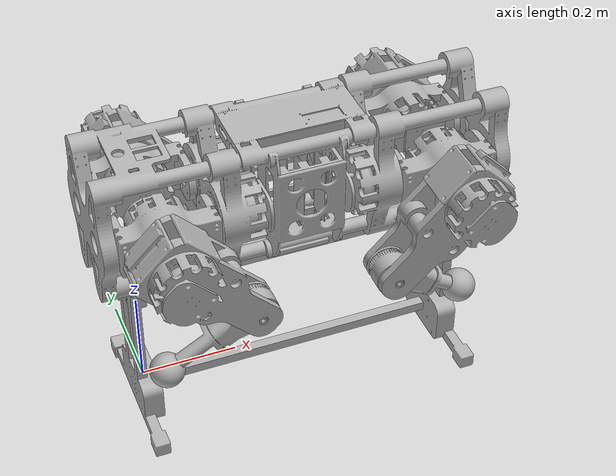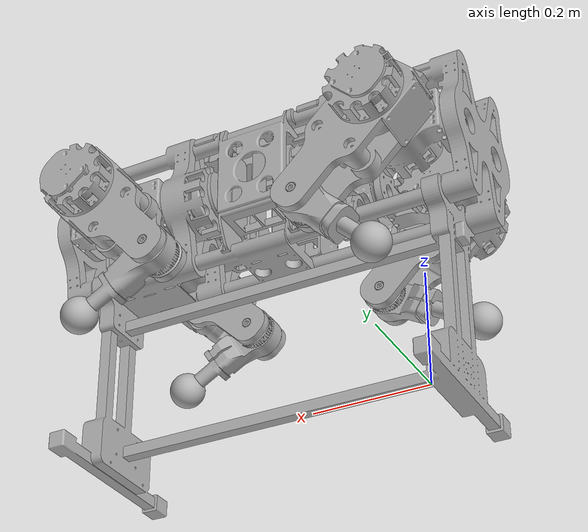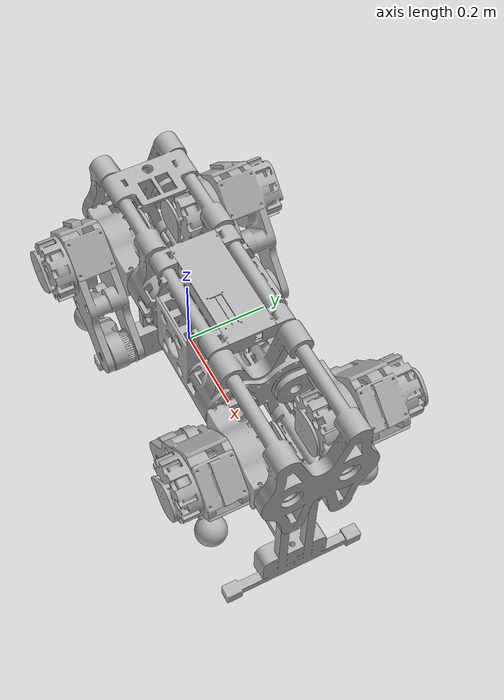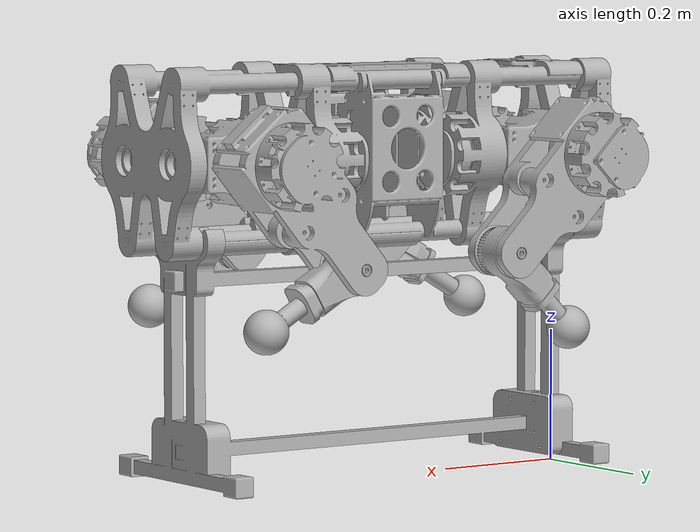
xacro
<?xml version="1.0" ?>
<robot name="opendog_stand" xmlns:xacro="http://www.ros.org/wiki/xacro">

<!-- Configuration of Robot Links-->

<xacro:include filename="$(find opendog_stand_description)/urdf/opendog_stand_links.xacro" />

<!-- Configuration of Robot Joints-->

<xacro:include filename="$(find opendog_stand_description)/urdf/opendog_stand_joints.xacro" />

<!-- Configuration of Ros2_control-->

<xacro:include filename="$(find opendog_stand_description)/urdf/opendog_stand_ros2_control_plugin.xacro" />

<!-- Other Configurations-->

<xacro:include filename="$(find opendog_stand_description)/urdf/opendog_stand.trans" />
<xacro:include filename="$(find opendog_stand_description)/urdf/opendog_stand.gazebo" />
<xacro:include filename="$(find opendog_stand_description)/urdf/materials.xacro" />
</robot>

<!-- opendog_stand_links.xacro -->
<robot name="openleg" xmlns:xacro="http://www.ros.org/wiki/xacro">

<!-- Robot Links -->
<link name="world"/>
<link name="base_link">
  <inertial>
    <origin xyz="0.29765856523805456 -0.06705638041729904 0.14855597421852995" rpy="0 0 0"/>
    <mass value="20.266474825537127"/>
    <inertia ixx="0.375037" iyy="2.100295" izz="1.821548" ixy="-0.001521" iyz="-0.000617" ixz="0.0"/>
  </inertial>
  <visual>
    <origin xyz="0 0 0" rpy="0 0 0"/>
    <geometry>
      <mesh filename="file://$(find opendog_stand_description)/meshes/base_link.stl" scale="0.001 0.001 0.001"/>
    </geometry>
    <material name="silver"/>
  </visual>
  <collision>
    <origin xyz="0 0 0" rpy="0 0 0"/>
    <geometry>
      <mesh filename="file://$(find opendog_stand_description)/meshes/base_link.stl" scale="0.001 0.001 0.001"/>
    </geometry>
  </collision>
</link>

<link name="ur_shoulder_1">
  <inertial>
    <origin xyz="-0.09785829303628078 0.02223966584464055 0.00016305377611242067" rpy="0 0 0"/>
    <mass value="8.21838423136781"/>
    <inertia ixx="0.012708" iyy="0.027002" izz="0.026258" ixy="-0.000651" iyz="4.8e-05" ixz="1.1e-05"/>
  </inertial>
  <visual>
    <origin xyz="-0.123659 0.007686 -0.474485" rpy="0 0 0"/>
    <geometry>
      <mesh filename="file://$(find opendog_stand_description)/meshes/ur_shoulder_1.stl" scale="0.001 0.001 0.001"/>
    </geometry>
    <material name="silver"/>
  </visual>
  <collision>
    <origin xyz="-0.123659 0.007686 -0.474485" rpy="0 0 0"/>
    <geometry>
      <mesh filename="file://$(find opendog_stand_description)/meshes/ur_shoulder_1.stl" scale="0.001 0.001 0.001"/>
    </geometry>
  </collision>
</link>

<link name="ur_middleleg_1">
  <inertial>
    <origin xyz="0.02655252289271656 0.05472965720806993 -0.026878473024749328" rpy="0 0 0"/>
    <mass value="14.227687011972318"/>
    <inertia ixx="0.061226" iyy="0.085803" izz="0.061502" ixy="0.005391" iyz="-0.005035" ixz="0.027705"/>
  </inertial>
  <visual>
    <origin xyz="-0.024018 -0.058674 -0.474485" rpy="0 0 0"/>
    <geometry>
      <mesh filename="file://$(find opendog_stand_description)/meshes/ur_middleleg_1.stl" scale="0.001 0.001 0.001"/>
    </geometry>
    <material name="silver"/>
  </visual>
  <collision>
    <origin xyz="-0.024018 -0.058674 -0.474485" rpy="0 0 0"/>
    <geometry>
      <mesh filename="file://$(find opendog_stand_description)/meshes/ur_middleleg_1.stl" scale="0.001 0.001 0.001"/>
    </geometry>
  </collision>
</link>

<link name="ul_shoulder_1">
  <inertial>
    <origin xyz="-0.09797154941116658 -0.022107897325156334 0.0001637293869130585" rpy="0 0 0"/>
    <mass value="8.250541403982718"/>
    <inertia ixx="0.012737" iyy="0.027034" izz="0.026319" ixy="0.000689" iyz="-4.7e-05" ixz="1.2e-05"/>
  </inertial>
  <visual>
    <origin xyz="-0.123659 0.125967 -0.474485" rpy="0 0 0"/>
    <geometry>
      <mesh filename="file://$(find opendog_stand_description)/meshes/ul_shoulder_1.stl" scale="0.001 0.001 0.001"/>
    </geometry>
    <material name="silver"/>
  </visual>
  <collision>
    <origin xyz="-0.123659 0.125967 -0.474485" rpy="0 0 0"/>
    <geometry>
      <mesh filename="file://$(find opendog_stand_description)/meshes/ul_shoulder_1.stl" scale="0.001 0.001 0.001"/>
    </geometry>
  </collision>
</link>

<link name="ul_middleleg_1">
  <inertial>
    <origin xyz="0.026552263666205788 -0.05473054768390884 -0.026878297131730566" rpy="0 0 0"/>
    <mass value="14.227664566368246"/>
    <inertia ixx="0.061226" iyy="0.085803" izz="0.061502" ixy="-0.005391" iyz="0.005035" ixz="0.027705"/>
  </inertial>
  <visual>
    <origin xyz="-0.024018 0.192326 -0.474485" rpy="0 0 0"/>
    <geometry>
      <mesh filename="file://$(find opendog_stand_description)/meshes/ul_middleleg_1.stl" scale="0.001 0.001 0.001"/>
    </geometry>
    <material name="silver"/>
  </visual>
  <collision>
    <origin xyz="-0.024018 0.192326 -0.474485" rpy="0 0 0"/>
    <geometry>
      <mesh filename="file://$(find opendog_stand_description)/meshes/ul_middleleg_1.stl" scale="0.001 0.001 0.001"/>
    </geometry>
  </collision>
</link>

<link name="ll_hip_1">
  <inertial>
    <origin xyz="0.0978556052486162 -0.022143362618367995 0.00015911556218167755" rpy="0 0 0"/>
    <mass value="8.221636898406961"/>
    <inertia ixx="0.012784" iyy="0.027006" izz="0.026333" ixy="-0.000657" iyz="-4.9e-05" ixz="-1.1e-05"/>
  </inertial>
  <visual>
    <origin xyz="-0.471659 0.125967 -0.474485" rpy="0 0 0"/>
    <geometry>
      <mesh filename="file://$(find opendog_stand_description)/meshes/ll_hip_1.stl" scale="0.001 0.001 0.001"/>
    </geometry>
    <material name="silver"/>
  </visual>
  <collision>
    <origin xyz="-0.471659 0.125967 -0.474485" rpy="0 0 0"/>
    <geometry>
      <mesh filename="file://$(find opendog_stand_description)/meshes/ll_hip_1.stl" scale="0.001 0.001 0.001"/>
    </geometry>
  </collision>
</link>

<link name="ll_middleleg_1">
  <inertial>
    <origin xyz="-0.02655239130407583 -0.05473053921082616 -0.026878472414248566" rpy="0 0 0"/>
    <mass value="14.227687254589894"/>
    <inertia ixx="0.061226" iyy="0.085803" izz="0.061502" ixy="0.005391" iyz="0.005035" ixz="-0.027705"/>
  </inertial>
  <visual>
    <origin xyz="-0.571299 0.192326 -0.474485" rpy="0 0 0"/>
    <geometry>
      <mesh filename="file://$(find opendog_stand_description)/meshes/ll_middleleg_1.stl" scale="0.001 0.001 0.001"/>
    </geometry>
    <material name="silver"/>
  </visual>
  <collision>
    <origin xyz="-0.571299 0.192326 -0.474485" rpy="0 0 0"/>
    <geometry>
      <mesh filename="file://$(find opendog_stand_description)/meshes/ll_middleleg_1.stl" scale="0.001 0.001 0.001"/>
    </geometry>
  </collision>
</link>

<link name="lr_hip_1">
  <inertial>
    <origin xyz="0.09785741891175764 0.022239671062088552 0.00016304661283195188" rpy="0 0 0"/>
    <mass value="8.218386359006598"/>
    <inertia ixx="0.012708" iyy="0.027002" izz="0.026258" ixy="0.000651" iyz="4.8e-05" ixz="-1.1e-05"/>
  </inertial>
  <visual>
    <origin xyz="-0.471659 0.007686 -0.474485" rpy="0 0 0"/>
    <geometry>
      <mesh filename="file://$(find opendog_stand_description)/meshes/lr_hip_1.stl" scale="0.001 0.001 0.001"/>
    </geometry>
    <material name="silver"/>
  </visual>
  <collision>
    <origin xyz="-0.471659 0.007686 -0.474485" rpy="0 0 0"/>
    <geometry>
      <mesh filename="file://$(find opendog_stand_description)/meshes/lr_hip_1.stl" scale="0.001 0.001 0.001"/>
    </geometry>
  </collision>
</link>

<link name="lr_middleleg_1">
  <inertial>
    <origin xyz="-0.02410854634893167 0.05472964093419624 -0.029090152760393895" rpy="0 0 0"/>
    <mass value="14.2276519621801"/>
    <inertia ixx="0.066039" iyy="0.085803" izz="0.056689" ixy="-0.004932" iyz="-0.005486" ixz="-0.027308"/>
  </inertial>
  <visual>
    <origin xyz="-0.571299 -0.058674 -0.474485" rpy="0 0 0"/>
    <geometry>
      <mesh filename="file://$(find opendog_stand_description)/meshes/lr_middleleg_1.stl" scale="0.001 0.001 0.001"/>
    </geometry>
    <material name="silver"/>
  </visual>
  <collision>
    <origin xyz="-0.571299 -0.058674 -0.474485" rpy="0 0 0"/>
    <geometry>
      <mesh filename="file://$(find opendog_stand_description)/meshes/lr_middleleg_1.stl" scale="0.001 0.001 0.001"/>
    </geometry>
  </collision>
</link>

<link name="lr_lowerleg_2">
  <inertial>
    <origin xyz="0.06224361192579653 -0.0401732772739245 -0.03594052661627556" rpy="0 0 0"/>
    <mass value="4.0749496298790815"/>
    <inertia ixx="0.006615" iyy="0.021256" izz="0.016145" ixy="0.000143" iyz="-8.3e-05" ixz="0.008252"/>
  </inertial>
  <visual>
    <origin xyz="-0.443153 -0.140674 -0.321767" rpy="0 0 0"/>
    <geometry>
      <mesh filename="file://$(find opendog_stand_description)/meshes/lr_lowerleg_2.stl" scale="0.001 0.001 0.001"/>
    </geometry>
    <material name="silver"/>
  </visual>
  <collision>
    <origin xyz="-0.443153 -0.140674 -0.321767" rpy="0 0 0"/>
    <geometry>
      <mesh filename="file://$(find opendog_stand_description)/meshes/lr_lowerleg_2.stl" scale="0.001 0.001 0.001"/>
    </geometry>
  </collision>
</link>

<link name="ll_lowerLeg_1">
  <inertial>
    <origin xyz="0.06224395628672491 0.04017239517999152 -0.0359407275155198" rpy="0 0 0"/>
    <mass value="4.074949631235474"/>
    <inertia ixx="0.006615" iyy="0.021256" izz="0.016145" ixy="-0.000143" iyz="8.3e-05" ixz="0.008252"/>
  </inertial>
  <visual>
    <origin xyz="-0.43033 0.274326 -0.333517" rpy="0 0 0"/>
    <geometry>
      <mesh filename="file://$(find opendog_stand_description)/meshes/ll_lowerLeg_1.stl" scale="0.001 0.001 0.001"/>
    </geometry>
    <material name="silver"/>
  </visual>
  <collision>
    <origin xyz="-0.43033 0.274326 -0.333517" rpy="0 0 0"/>
    <geometry>
      <mesh filename="file://$(find opendog_stand_description)/meshes/ll_lowerLeg_1.stl" scale="0.001 0.001 0.001"/>
    </geometry>
  </collision>
</link>

<link name="ul_lowerleg_1">
  <inertial>
    <origin xyz="-0.07156807198737279 0.04020081884647034 -0.041323948195093385" rpy="0 0 0"/>
    <mass value="4.21995926358348"/>
    <inertia ixx="0.008622" iyy="0.029242" izz="0.022138" ixy="0.000174" iyz="0.000101" ixz="-0.011703"/>
  </inertial>
  <visual>
    <origin xyz="-0.164987 0.274326 -0.333517" rpy="0 0 0"/>
    <geometry>
      <mesh filename="file://$(find opendog_stand_description)/meshes/ul_lowerleg_1.stl" scale="0.001 0.001 0.001"/>
    </geometry>
    <material name="silver"/>
  </visual>
  <collision>
    <origin xyz="-0.164987 0.274326 -0.333517" rpy="0 0 0"/>
    <geometry>
      <mesh filename="file://$(find opendog_stand_description)/meshes/ul_lowerleg_1.stl" scale="0.001 0.001 0.001"/>
    </geometry>
  </collision>
</link>

<link name="ur_lowerleg_1">
  <inertial>
    <origin xyz="-0.050820875236943314 -0.04017327621481369 -0.05082597628130897" rpy="0 0 0"/>
    <mass value="4.07494961611928"/>
    <inertia ixx="0.011379" iyy="0.021256" izz="0.011381" ixy="-0.000117" iyz="-0.000117" ixz="-0.009529"/>
  </inertial>
  <visual>
    <origin xyz="-0.164987 -0.140674 -0.333517" rpy="0 0 0"/>
    <geometry>
      <mesh filename="file://$(find opendog_stand_description)/meshes/ur_lowerleg_1.stl" scale="0.001 0.001 0.001"/>
    </geometry>
    <material name="silver"/>
  </visual>
  <collision>
    <origin xyz="-0.164987 -0.140674 -0.333517" rpy="0 0 0"/>
    <geometry>
      <mesh filename="file://$(find opendog_stand_description)/meshes/ur_lowerleg_1.stl" scale="0.001 0.001 0.001"/>
    </geometry>
  </collision>
</link>

<link name="base_linkr_1">
  <inertial>
    <origin xyz="-0.3678228631538539 0.05042615495359001 0.09021826931094556" rpy="0 0 0"/>
    <mass value="70.88293840121786"/>
    <inertia ixx="0.761631" iyy="4.077449" izz="3.905689" ixy="-0.001055" iyz="-0.000345" ixz="0.05479"/>
  </inertial>
  <visual>
    <origin xyz="-0.665939 0.117254 -0.385318" rpy="0 0 0"/>
    <geometry>
      <mesh filename="file://$(find opendog_stand_description)/meshes/base_linkr_1.stl" scale="0.001 0.001 0.001"/>
    </geometry>
    <material name="silver"/>
  </visual>
  <collision>
    <origin xyz="-0.665939 0.117254 -0.385318" rpy="0 0 0"/>
    <geometry>
      <mesh filename="file://$(find opendog_stand_description)/meshes/base_linkr_1.stl" scale="0.001 0.001 0.001"/>
    </geometry>
  </collision>
</link>
</robot>

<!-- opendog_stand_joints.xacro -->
<robot name="opendog_stand" xmlns:xacro="http://www.ros.org/wiki/xacro">

<!-- Joints -->

<joint name="fixed_to_world_joint" type="fixed">
  <origin xyz="0 0 0" rpy="0 0 0"/>
  <parent link="world"/>
  <child link="base_link"/>
</joint>

<joint name="ur_shoulder_to_base_link" type="revolute">
  <origin xyz="-0.54228 0.109568 0.089167" rpy="0 0 0"/>
  <parent link="base_linkr_1"/>
  <child link="ur_shoulder_1"/>
  <axis xyz="1.0 -0.0 0.0"/>
  <limit upper="0.349066" lower="-0.349066" effort="100" velocity="100"/>
</joint>

<joint name="ur_upperleg_to_shoulder" type="continuous">
  <origin xyz="-0.099641 0.06636 0.0" rpy="0 0 0"/>
  <parent link="ur_shoulder_1"/>
  <child link="ur_middleleg_1"/>
  <axis xyz="-0.0 -1.0 -0.0"/>
</joint>

<joint name="ul_shoulder_to_base_link" type="revolute">
  <origin xyz="-0.54228 -0.008713 0.089167" rpy="0 0 0"/>
  <parent link="base_linkr_1"/>
  <child link="ul_shoulder_1"/>
  <axis xyz="-1.0 0.0 -0.0"/>
  <limit upper="0.349066" lower="-0.785398" effort="100" velocity="100"/>
</joint>

<joint name="ul_upperleg_to_shoulder" type="continuous">
  <origin xyz="-0.099641 -0.066359 0.0" rpy="0 0 0"/>
  <parent link="ul_shoulder_1"/>
  <child link="ul_middleleg_1"/>
  <axis xyz="-0.0 -1.0 0.0"/>
</joint>

<joint name="ll_hip_to_base_link" type="revolute">
  <origin xyz="-0.19428 -0.008713 0.089167" rpy="0 0 0"/>
  <parent link="base_linkr_1"/>
  <child link="ll_hip_1"/>
  <axis xyz="-1.0 0.0 0.0"/>
  <limit upper="0.436332" lower="-0.785398" effort="100" velocity="100"/>
</joint>

<joint name="ll_upperleg_to_hip" type="continuous">
  <origin xyz="0.09964 -0.066359 0.0" rpy="0 0 0"/>
  <parent link="ll_hip_1"/>
  <child link="ll_middleleg_1"/>
  <axis xyz="0.0 1.0 -0.0"/>
</joint>

<joint name="lr_hip_to_base_link" type="revolute">
  <origin xyz="-0.19428 0.109568 0.089167" rpy="0 0 0"/>
  <parent link="base_linkr_1"/>
  <child link="lr_hip_1"/>
  <axis xyz="1.0 -0.0 -0.0"/>
  <limit upper="0.349066" lower="-0.785398" effort="100" velocity="100"/>
</joint>

<joint name="lr_upperleg_to_hip" type="continuous">
  <origin xyz="0.09964 0.06636 0.0" rpy="0 0 0"/>
  <parent link="lr_hip_1"/>
  <child link="lr_middleleg_1"/>
  <axis xyz="-0.0 1.0 0.0"/>
</joint>

<joint name="lr_lowerleg_to_upperleg" type="continuous">
  <origin xyz="-0.128146 0.082 -0.152718" rpy="0 0 0"/>
  <parent link="lr_middleleg_1"/>
  <child link="lr_lowerleg_2"/>
  <axis xyz="-0.0 1.0 0.0"/>
</joint>

<joint name="ll_lowerleg_to_upperleg" type="continuous">
  <origin xyz="-0.140969 -0.082 -0.140968" rpy="0 0 0"/>
  <parent link="ll_middleleg_1"/>
  <child link="ll_lowerLeg_1"/>
  <axis xyz="0.0 1.0 -0.0"/>
</joint>

<joint name="ul_lowerleg_to_upperleg" type="continuous">
  <origin xyz="0.140969 -0.082 -0.140968" rpy="0 0 0"/>
  <parent link="ul_middleleg_1"/>
  <child link="ul_lowerleg_1"/>
  <axis xyz="-0.0 -1.0 0.0"/>
</joint>

<joint name="ur_lowerleg_to_upperleg" type="continuous">
  <origin xyz="0.140969 0.082 -0.140968" rpy="0 0 0"/>
  <parent link="ur_middleleg_1"/>
  <child link="ur_lowerleg_1"/>
  <axis xyz="-0.0 -1.0 -0.0"/>
</joint>

<joint name="Rigid 28" type="fixed">
  <origin xyz="0.665939 -0.117254 0.385318" rpy="0 0 0"/>
  <parent link="base_link"/>
  <child link="base_linkr_1"/>
</joint>

</robot>

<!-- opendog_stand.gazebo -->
<robot name="opendog_stand" xmlns:xacro="http://www.ros.org/wiki/xacro" >

<xacro:property name="body_color" value="Gazebo/Silver" />

<gazebo>
  <plugin name="control" filename="libgazebo_ros_control.so"/>
</gazebo>
<gazebo reference="base_link">
  <material>${body_color}</material>
  <mu1>0.2</mu1>
  <mu2>0.2</mu2>
  <self_collide>true</self_collide>
  <gravity>true</gravity>
</gazebo>

<gazebo reference="ur_shoulder_1">
  <material>${body_color}</material>
  <mu1>0.2</mu1>
  <mu2>0.2</mu2>
  <self_collide>true</self_collide>
</gazebo>

<gazebo reference="ur_middleleg_1">
  <material>${body_color}</material>
  <mu1>0.2</mu1>
  <mu2>0.2</mu2>
  <self_collide>true</self_collide>
</gazebo>

<gazebo reference="ul_shoulder_1">
  <material>${body_color}</material>
  <mu1>0.2</mu1>
  <mu2>0.2</mu2>
  <self_collide>true</self_collide>
</gazebo>

<gazebo reference="ul_middleleg_1">
  <material>${body_color}</material>
  <mu1>0.2</mu1>
  <mu2>0.2</mu2>
  <self_collide>true</self_collide>
</gazebo>

<gazebo reference="ll_hip_1">
  <material>${body_color}</material>
  <mu1>0.2</mu1>
  <mu2>0.2</mu2>
  <self_collide>true</self_collide>
</gazebo>

<gazebo reference="ll_middleleg_1">
  <material>${body_color}</material>
  <mu1>0.2</mu1>
  <mu2>0.2</mu2>
  <self_collide>true</self_collide>
</gazebo>

<gazebo reference="lr_hip_1">
  <material>${body_color}</material>
  <mu1>0.2</mu1>
  <mu2>0.2</mu2>
  <self_collide>true</self_collide>
</gazebo>

<gazebo reference="lr_middleleg_1">
  <material>${body_color}</material>
  <mu1>0.2</mu1>
  <mu2>0.2</mu2>
  <self_collide>true</self_collide>
</gazebo>

<gazebo reference="lr_lowerleg_2">
  <material>${body_color}</material>
  <mu1>0.2</mu1>
  <mu2>0.2</mu2>
  <self_collide>true</self_collide>
</gazebo>

<gazebo reference="ll_lowerLeg_1">
  <material>${body_color}</material>
  <mu1>0.2</mu1>
  <mu2>0.2</mu2>
  <self_collide>true</self_collide>
</gazebo>

<gazebo reference="ul_lowerleg_1">
  <material>${body_color}</material>
  <mu1>0.2</mu1>
  <mu2>0.2</mu2>
  <self_collide>true</self_collide>
</gazebo>

<gazebo reference="ur_lowerleg_1">
  <material>${body_color}</material>
  <mu1>0.2</mu1>
  <mu2>0.2</mu2>
  <self_collide>true</self_collide>
</gazebo>

<gazebo reference="base_linkr_1">
  <material>${body_color}</material>
  <mu1>0.2</mu1>
  <mu2>0.2</mu2>
  <self_collide>true</self_collide>
</gazebo>

</robot>

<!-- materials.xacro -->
<robot name="opendog_stand" xmlns:xacro="http://www.ros.org/wiki/xacro" >

<material name="silver">
  <color rgba="0.700 0.700 0.700 1.000"/>
</material>

</robot>
